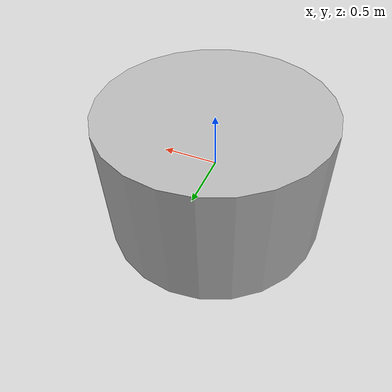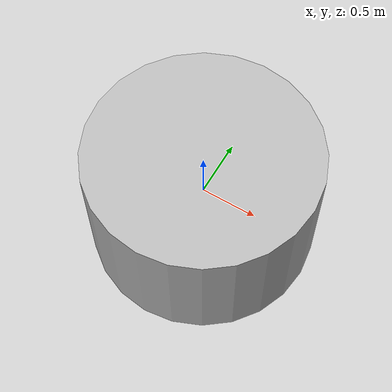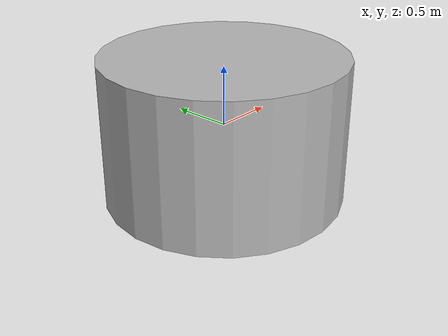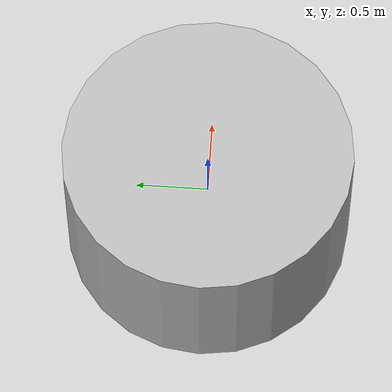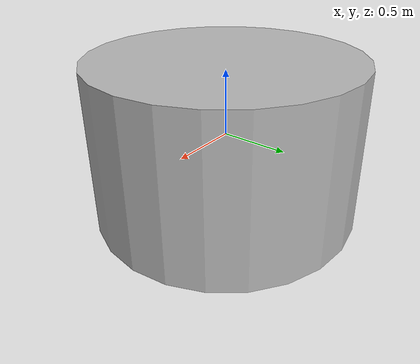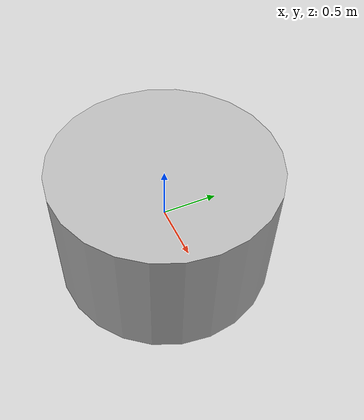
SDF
<?xml version="1.0" ?>
<sdf version="1.4">
  <world name="default">

    <include>
      <uri>model://sun</uri>
    </include>

    <physics type="ode">
      <gravity>0 0 -9.81</gravity>
      <max_step_size>0.001</max_step_size>
      <real_time_factor>1</real_time_factor>
      <real_time_update_rate>1000</real_time_update_rate>
      <ode>
        <solver>
          <type>quick</type>
          <iters>50</iters>
          <sor>1.4</sor>
        </solver>
        <constraints>
          <cfm>0</cfm>
          <erp>1</erp>
          <contact_max_correcting_vel>0</contact_max_correcting_vel>
          <contact_surface_layer>0</contact_surface_layer>
        </constraints>
      </ode>
    </physics>

  <model name="box">
    <link name="link">
      <visual name="visual">

        <geometry>
          <cylinder>
            <radius>1</radius>
            <length>1.2</length>
          </cylinder>
        </geometry>

      </visual>
    </link>
  </model>

  </world>
</sdf>
